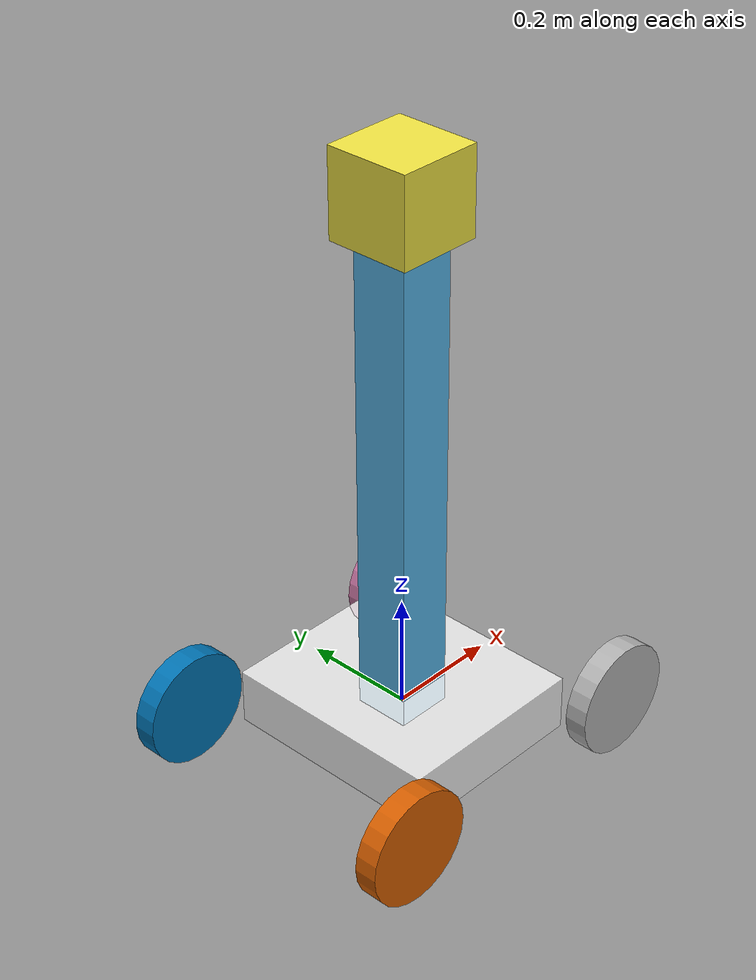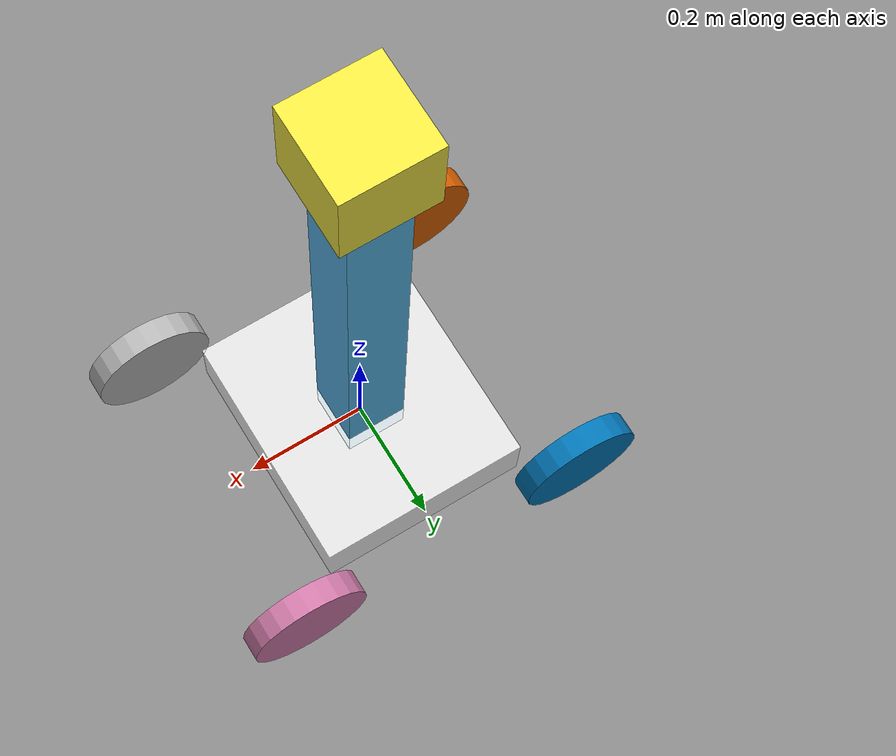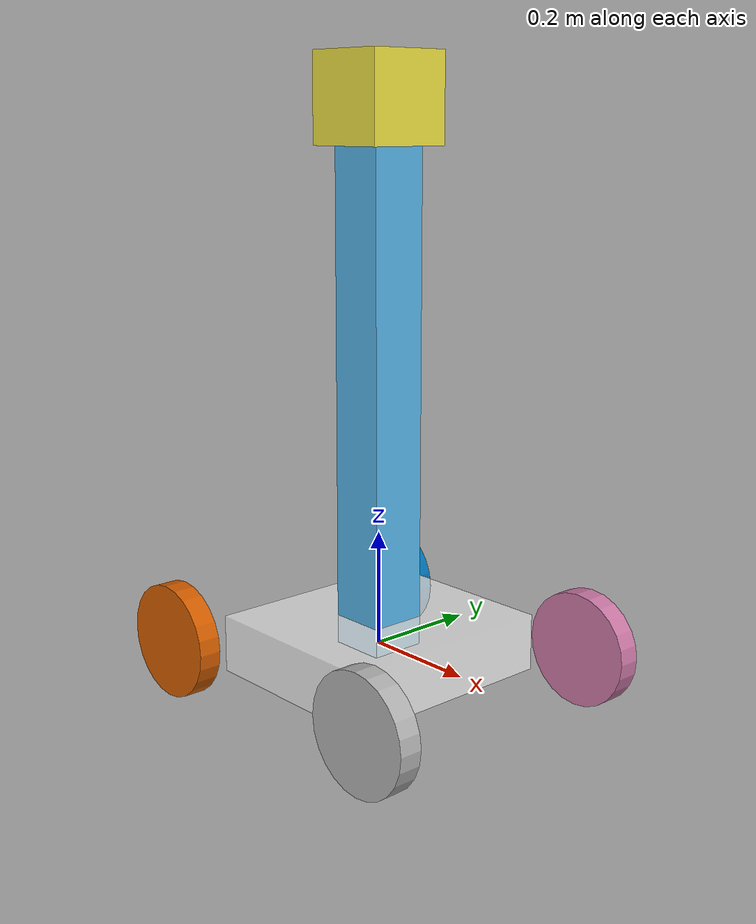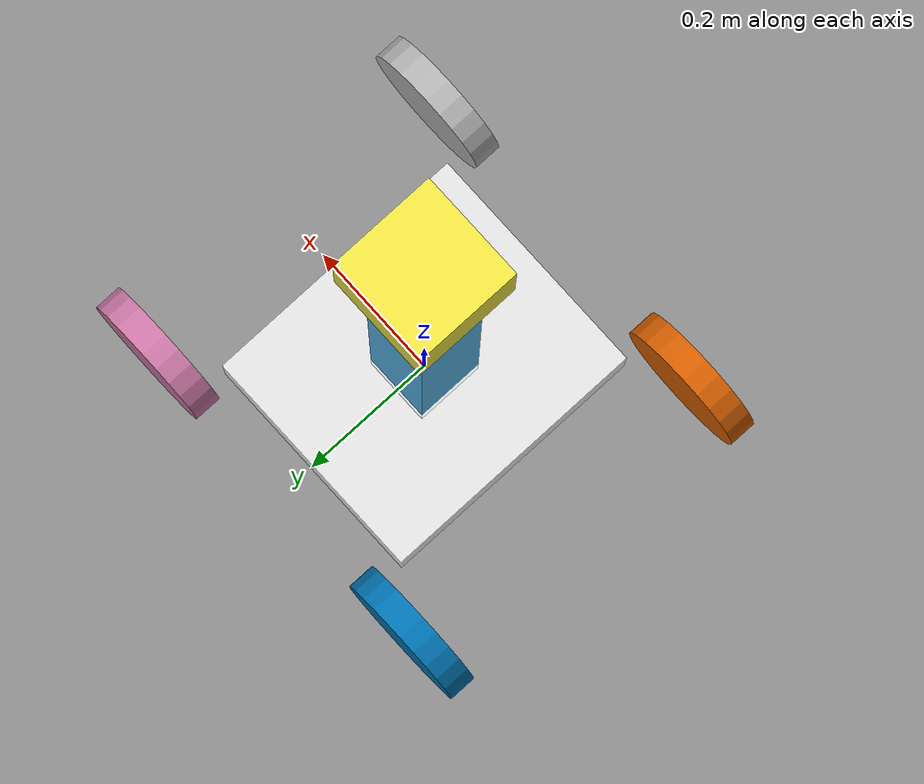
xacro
<?xml version="1.0"?>
<robot xmlns:xacro="http://www.ros.org/wiki/xacro" name="mobile_robot">

  <link name="base_link">
    <visual>
      <origin xyz="0 0 0" rpy="0 0 0"/>
      <geometry>
        <box size="0.35 0.4 0.10"/>
      </geometry>
      <material name="acrylic">
        <color rgba="1 1 1 0.8"/>
      </material>
    </visual>
    <collision>
      <origin xyz="0 0 0" rpy="0 0 0"/>
      <geometry>
        <box size="0.35 0.4 0.10"/>
      </geometry>
    </collision>
    <inertial>
      <mass value="20.0"/>
      <inertia ixx="1.0" ixy="0.0" ixz="0.0" iyy="1.0" iyz="0.0" izz="1.0"/>
    </inertial>
  </link>

  <joint name="cam_stand_joint" type="fixed">
    <origin xyz="0.0 0.0 0.45" rpy="0 0 0" />
    <parent link="base_link"/>
    <child link="cam_stand" />
  </joint>

  <!-- the model -->
  <link name="cam_stand">
    <inertial>
      <mass value="1" />
      <origin xyz="0 0 0.00" />
      <inertia ixx="1.0" ixy="0.0" ixz="0.0"
        iyy="1.0" iyz="0.0"
        izz="1.0" />
    </inertial>
    <visual>
      <geometry>
        <box size=".1 .1 .9" /> <!-- does not need to match collision -->
      </geometry>
    </visual>
    <collision>
      <origin xyz="0 0 0" rpy="0 0 0"/>
      <geometry>
        <box size="0.6 0.4 0.10"/>
      </geometry>
    </collision>
  </link>

   <joint name="cam_prismatic" type="prismatic">
      <child link="cam_stand_primsatic" />
      <parent link="cam_stand"/>
      <origin xyz="0.0 0 0.475" rpy="0 0 0"/>
      <axis xyz="0 0 -1"/>
      <limit effort="1000.0" lower="-0.2" upper="0.2" velocity="0.5"/>
    </joint>

  <transmission name="cam_prismatic_trans">
    <type>transmission_interface/SimpleTransmission</type>
    <joint name="cam_prismatic">
      <hardwareInterface>hardware_interface/EffortJointInterface</hardwareInterface>
    </joint>
    <actuator name="motorToCamPris">
      <hardwareInterface>hardware_interface/EffortJointInterface</hardwareInterface>
      <mechanicalReduction>1</mechanicalReduction>
    </actuator>
  </transmission>

  <link name="cam_stand_primsatic">
    <inertial>
      <mass value=".1" />
      <origin xyz="0 0 0.00" />
      <inertia ixx="1.0" ixy="0.0" ixz="0.0"
        iyy="1.0" iyz="0.0"
        izz="1.0" />
    </inertial>
    <visual>
      <geometry>
        <box size="0.01 0.01 0.01" /> <!-- does not need to match collision -->
      </geometry>
    </visual>
  </link>

   <joint name="cam_revolute" type="continuous">
      <origin xyz="0.0 0.0 0.0" rpy="0 0 0"/>
      <axis rpy="0 0 0" xyz="0 1 0"/>
      <parent link="cam_stand_primsatic"/>
      <child link="cam"/>
    </joint>

  <transmission name="cam_revolute_trans">
    <type>transmission_interface/SimpleTransmission</type>
    <joint name="cam_revolute">
      <hardwareInterface>hardware_interface/EffortJointInterface</hardwareInterface>
    </joint>
    <actuator name="motorToCamRev">
      <hardwareInterface>hardware_interface/EffortJointInterface</hardwareInterface>
      <mechanicalReduction>1</mechanicalReduction>
    </actuator>
  </transmission>

  <link name="cam">
    <inertial>
      <mass value=".1" />
      <origin xyz="0 0 0.00" />
      <inertia ixx="1.0" ixy="0.0" ixz="0.0"
        iyy="1.0" iyz="0.0"
        izz="1.0" />
    </inertial>
    <visual>
      <geometry>
        <box size="0.15 0.15 0.15" /> <!-- does not need to match collision -->
      </geometry>
    </visual>
  </link>

  <gazebo reference="cam">
    <gravity>true</gravity>
    <sensor name="imu_sensor" type="imu">
      <always_on>true</always_on>
      <update_rate>300</update_rate>
      <visualize>true</visualize>
      <topic>camera_imu</topic>
      <plugin filename="libgazebo_ros_imu_sensor.so" name="imu_plugin">
        <topicName>camera_imu</topicName>
        <bodyName>cam</bodyName>
        <updateRateHZ>300.0</updateRateHZ>
        <gaussianNoise>0.001</gaussianNoise>
        <xyzOffset>0 0 0</xyzOffset>
        <rpyOffset>0 0 0</rpyOffset>
        <frameName>cam</frameName>
        <initialOrientationAsReference>false</initialOrientationAsReference>
      </plugin>
      <pose>0 0 0 0 0 0</pose>
    </sensor>
  </gazebo>

    <gazebo reference="cam">
    <sensor type="multicamera" name="stereo_camera">
      <update_rate>15.0</update_rate>
      <camera name="left">
        <horizontal_fov>1.047</horizontal_fov>
            <image>
                <width>640</width>
                <height>480</height>
                <format>RGB_INT8</format>
            </image>
        <clip>
          <near>0.1</near>
          <far>100</far>
        </clip>
        <noise>
          <type>gaussian</type>
          <mean>0.0</mean>
          <stddev>0.0001</stddev>
        </noise>
      </camera>
      <camera name="right">
        <pose>0 -0.1 0 0 0 0</pose>
        <horizontal_fov>1.047</horizontal_fov>
            <image>
                <width>640</width>
                <height>480</height>
                <format>RGB_INT8</format>
            </image>
        <clip>
          <near>0.1</near>
          <far>100</far>
        </clip>
        <noise>
          <type>gaussian</type>
          <mean>0.0</mean>
          <stddev>0.0001</stddev>
        </noise>
      </camera>
      <plugin name="stereo_camera_controller" filename="libgazebo_ros_multicamera.so">
        <alwaysOn>true</alwaysOn>
        <updateRate>0.0</updateRate>
        <cameraName>simulated/camera</cameraName>
        <imageTopicName>image_raw</imageTopicName>
        <cameraInfoTopicName>camera_info</cameraInfoTopicName>
        <frameName>left_camera_optical_frame</frameName>
        <hackBaseline>0.1</hackBaseline>
        <distortionK1>0.0</distortionK1>
        <distortionK2>0.0</distortionK2>
        <distortionK3>0.0</distortionK3>
        <distortionT1>0.0</distortionT1>
        <distortionT2>0.0</distortionT2>
      </plugin>
    </sensor>
  </gazebo>

  <link name="wh_left_back">
    <visual>
      <origin xyz="0 0 0" rpy="1.57079632679 0 0"/>
      <geometry>
        <cylinder length="0.04" radius="0.1"/>
      </geometry>
    </visual>
    <collision>
      <origin xyz="0 0 0" rpy="1.57079632679 0 0"/>
      <geometry>
        <cylinder length="0.04" radius="0.1"/>
      </geometry>
    </collision>
    <inertial>
      <mass value="1.0"/>
      <inertia ixx="1.0" ixy="0.0" ixz="0.0" iyy="1.0" iyz="0.0" izz="1.0"/>
    </inertial>
  </link>

  <joint name="base_link_wh_left_back" type="continuous">
    <origin xyz="-.25 .25 0" rpy="0 0 0"/>
    <axis rpy="0 0 0" xyz="0 1 0"/>
    <parent link="base_link"/>
    <child link="wh_left_back"/>
  </joint>

  <transmission name="base_link_wh_left_back_wheel_trans">
    <type>transmission_interface/SimpleTransmission</type>
    <actuator name="base_link_wh_left_back_wheel_motor">
      <mechanicalReduction>1</mechanicalReduction>
    </actuator>
    <joint name="base_link_wh_left_back">
      <hardwareInterface>hardware_interface/VelocityJointInterface</hardwareInterface>
    </joint>
  </transmission>

  <link name="wh_right_back">
    <visual>
      <origin xyz="0 0 0" rpy="1.57079632679 0 0"/>
      <geometry>
        <cylinder length="0.04" radius="0.1"/>
      </geometry>
    </visual>
    <collision>
      <origin xyz="0 0 0" rpy="1.57079632679 0 0"/>
      <geometry>
        <cylinder length="0.04" radius="0.1"/>
      </geometry>
    </collision>
    <inertial>
      <mass value="1.0"/>
      <inertia ixx="1.0" ixy="0.0" ixz="0.0" iyy="1.0" iyz="0.0" izz="1.0"/>
    </inertial>
  </link>

  <joint name="base_link_wh_right_back" type="continuous">
    <origin xyz="-.25 -.25 0" rpy="0 0 0"/>
    <axis rpy="0 0 0" xyz="0 1 0"/>
    <parent link="base_link"/>
    <child link="wh_right_back"/>
  </joint>

  <transmission name="base_link_wh_right_back_wheel_trans">
    <type>transmission_interface/SimpleTransmission</type>
    <actuator name="base_link_wh_right_back_wheel_motor">
      <mechanicalReduction>1</mechanicalReduction>
    </actuator>
    <joint name="base_link_wh_right_back">
      <hardwareInterface>hardware_interface/VelocityJointInterface</hardwareInterface>
    </joint>
  </transmission>

  <link name="wh_left_front">
    <visual>
      <origin xyz="0 0 0" rpy="1.57079632679 0 0"/>
      <geometry>
        <cylinder length="0.04" radius="0.1"/>
      </geometry>
    </visual>
    <collision>
      <origin xyz="0 0 0" rpy="1.57079632679 0 0"/>
      <geometry>
        <cylinder length="0.04" radius="0.1"/>
      </geometry>
    </collision>
    <inertial>
      <mass value="1.0"/>
      <inertia ixx="1.0" ixy="0.0" ixz="0.0" iyy="1.0" iyz="0.0" izz="1.0"/>
    </inertial>
  </link>

  <joint name="base_link_wh_left_front" type="continuous">
    <origin xyz="0.25 0.25 0" rpy="0 0 0"/>
    <axis rpy="0 0 0" xyz="0 1 0"/>
    <parent link="base_link"/>
    <child link="wh_left_front"/>
  </joint>

  <transmission name="base_link_wh_left_front_wheel_trans">
    <type>transmission_interface/SimpleTransmission</type>
    <actuator name="base_link_wh_left_front_wheel_motor">
      <mechanicalReduction>1</mechanicalReduction>
    </actuator>
    <joint name="base_link_wh_left_front">
      <hardwareInterface>hardware_interface/VelocityJointInterface</hardwareInterface>
    </joint>
  </transmission>

  <link name="wh_right_front">
    <visual>
      <origin xyz="0 0 0" rpy="1.57079632679 0 0"/>
      <geometry>
        <cylinder length="0.04" radius="0.1"/>
      </geometry>
    </visual>
    <collision>
      <origin xyz="0 0 0" rpy="1.57079632679 0 0"/>
      <geometry>
        <cylinder length="0.04" radius="0.1"/>
      </geometry>
    </collision>
    <inertial>
      <mass value="1.0"/>
      <inertia ixx="1.0" ixy="0.0" ixz="0.0" iyy="1.0" iyz="0.0" izz="1.0"/>
    </inertial>
  </link>

  <joint name="base_link_wh_right_front" type="continuous">
    <origin xyz="0.25 -.25 0" rpy="0 0 0"/>
    <axis rpy="0 0 0" xyz="0 1 0"/>
    <parent link="base_link"/>
    <child link="wh_right_front"/>
  </joint>

  <transmission name="base_link_wh_right_front_wheel_trans">
    <type>transmission_interface/SimpleTransmission</type>
    <actuator name="base_link_wh_right_front_wheel_motor">
      <mechanicalReduction>1</mechanicalReduction>
    </actuator>
    <joint name="base_link_wh_right_front">
      <hardwareInterface>hardware_interface/VelocityJointInterface</hardwareInterface>
    </joint>
  </transmission>

  <!-- =================== Gazebo ==================== -->
  <gazebo>
    <plugin name="gazebo_ros_control" filename="libgazebo_ros_control.so">
      <robotNamespace>/</robotNamespace>
    </plugin>
  </gazebo>
</robot>
